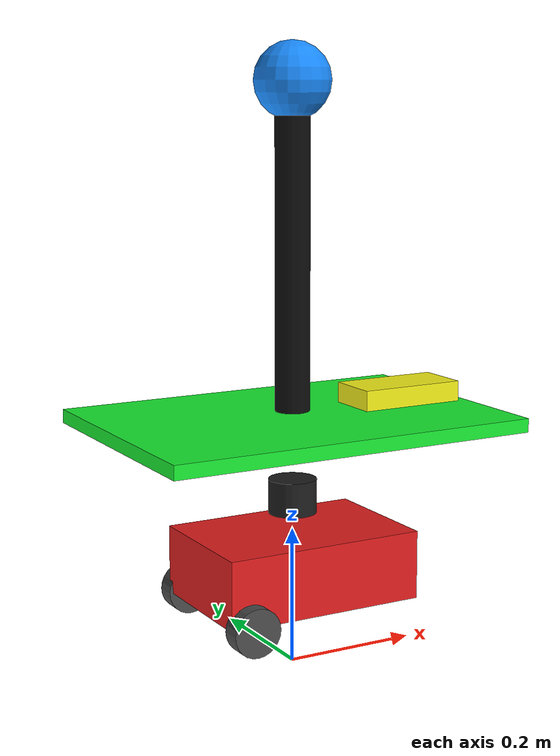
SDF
<?xml version="1.0"?>
<sdf version="1.10">
  <model name="diffbot">
    <pose>0 0 0.10 0 0 0</pose>
    <static>false</static>

    <link name="base_link">
      <inertial>
        <mass>5.0</mass>
        <inertia>
          <ixx>0.05</ixx><ixy>0</ixy><ixz>0</ixz>
          <iyy>0.08</iyy><iyz>0</iyz>
          <izz>0.10</izz>
        </inertia>
      </inertial>

      <collision name="base_collision">
        <pose>0 0 0.05 0 0 0</pose>
        <geometry>
          <box><size>0.30 0.20 0.10</size></box>
        </geometry>
      </collision>

      <visual name="base_visual">
        <pose>0 0 0.05 0 0 0</pose>
        <geometry>
          <box><size>0.30 0.20 0.10</size></box>
        </geometry>
        <material>
          <ambient>0.90 0.12 0.12 1</ambient>
          <diffuse>0.90 0.12 0.12 1</diffuse>
          <specular>0.15 0.15 0.15 1</specular>
        </material>
      </visual>

      <visual name="top_marker_visual">
        <pose>0 0 0.26 0 0 0</pose>
        <geometry>
          <box><size>0.55 0.38 0.02</size></box>
        </geometry>
        <material>
          <ambient>0.10 0.95 0.20 0.95</ambient>
          <diffuse>0.10 0.95 0.20 0.95</diffuse>
          <specular>0.05 0.05 0.05 1</specular>
        </material>
      </visual>

      <visual name="heading_marker_visual">
        <pose>0.18 0 0.285 0 0 0</pose>
        <geometry>
          <box><size>0.16 0.08 0.03</size></box>
        </geometry>
        <material>
          <ambient>0.98 0.96 0.10 1</ambient>
          <diffuse>0.98 0.96 0.10 1</diffuse>
          <specular>0.08 0.08 0.08 1</specular>
        </material>
      </visual>

      <visual name="mast_visual">
        <pose>0 0 0.50 0 0 0</pose>
        <geometry>
          <cylinder><radius>0.025</radius><length>0.45</length></cylinder>
        </geometry>
        <material>
          <ambient>0.05 0.05 0.05 1</ambient>
          <diffuse>0.05 0.05 0.05 1</diffuse>
          <specular>0.10 0.10 0.10 1</specular>
        </material>
      </visual>

      <visual name="mast_cap_visual">
        <pose>0 0 0.74 0 0 0</pose>
        <geometry>
          <sphere><radius>0.055</radius></sphere>
        </geometry>
        <material>
          <ambient>0.10 0.55 1.00 1</ambient>
          <diffuse>0.10 0.55 1.00 1</diffuse>
          <specular>0.10 0.10 0.10 1</specular>
        </material>
      </visual>
    </link>

    <link name="left_wheel_link">
      <pose>-0.12 0.105 0 1.5708 0 0</pose>
      <inertial>
        <mass>0.3</mass>
        <inertia>
          <ixx>0.0005</ixx><ixy>0</ixy><ixz>0</ixz>
          <iyy>0.001</iyy><iyz>0</iyz>
          <izz>0.0005</izz>
        </inertia>
      </inertial>
      <collision name="left_wheel_collision">
        <geometry>
          <cylinder><radius>0.035</radius><length>0.03</length></cylinder>
        </geometry>
        <surface>
          <friction>
            <ode>
              <mu>5.0</mu>
              <mu2>5.0</mu2>
              <slip1>0.0</slip1>
              <slip2>0.0</slip2>
            </ode>
          </friction>
        </surface>
      </collision>
      <visual name="left_wheel_visual">
        <geometry>
          <cylinder><radius>0.035</radius><length>0.03</length></cylinder>
        </geometry>
        <material>
          <ambient>0.2 0.2 0.2 1</ambient>
          <diffuse>0.3 0.3 0.3 1</diffuse>
        </material>
      </visual>
    </link>

    <link name="right_wheel_link">
      <pose>-0.12 -0.105 0 1.5708 0 0</pose>
      <inertial>
        <mass>0.3</mass>
        <inertia>
          <ixx>0.0005</ixx><ixy>0</ixy><ixz>0</ixz>
          <iyy>0.001</iyy><iyz>0</iyz>
          <izz>0.0005</izz>
        </inertia>
      </inertial>
      <collision name="right_wheel_collision">
        <geometry>
          <cylinder><radius>0.035</radius><length>0.03</length></cylinder>
        </geometry>
        <surface>
          <friction>
            <ode>
              <mu>5.0</mu>
              <mu2>5.0</mu2>
              <slip1>0.0</slip1>
              <slip2>0.0</slip2>
            </ode>
          </friction>
        </surface>
      </collision>
      <visual name="right_wheel_visual">
        <geometry>
          <cylinder><radius>0.035</radius><length>0.03</length></cylinder>
        </geometry>
        <material>
          <ambient>0.2 0.2 0.2 1</ambient>
          <diffuse>0.3 0.3 0.3 1</diffuse>
        </material>
      </visual>
    </link>

    <joint name="left_wheel_joint" type="revolute">
      <parent>base_link</parent>
      <child>left_wheel_link</child>
      <axis>
        <xyz expressed_in="__model__">0 1 0</xyz>
        <limit><lower>-1e16</lower><upper>1e16</upper></limit>
      </axis>
    </joint>

    <joint name="right_wheel_joint" type="revolute">
      <parent>base_link</parent>
      <child>right_wheel_link</child>
      <axis>
        <xyz expressed_in="__model__">0 1 0</xyz>
        <limit><lower>-1e16</lower><upper>1e16</upper></limit>
      </axis>
    </joint>

    <link name="laser_link">
      <pose>0 0 0.15 0 0 0</pose>
      <inertial>
        <mass>0.1</mass>
        <inertia>
          <ixx>0.0001</ixx><ixy>0</ixy><ixz>0</ixz>
          <iyy>0.0001</iyy><iyz>0</iyz>
          <izz>0.0001</izz>
        </inertia>
      </inertial>

      <visual name="laser_visual">
        <geometry>
          <cylinder><radius>0.035</radius><length>0.05</length></cylinder>
        </geometry>
        <material>
          <ambient>0.12 0.12 0.12 1</ambient>
          <diffuse>0.12 0.12 0.12 1</diffuse>
          <specular>0.05 0.05 0.05 1</specular>
        </material>
      </visual>

      <collision name="laser_collision">
        <geometry>
          <cylinder><radius>0.035</radius><length>0.05</length></cylinder>
        </geometry>
      </collision>

      <sensor name="lidar" type="gpu_lidar">
        <always_on>true</always_on>
        <visualize>false</visualize>
        <update_rate>10</update_rate>
        <topic>/lidar</topic>
        <lidar>
          <scan>
            <horizontal>
              <samples>360</samples>
              <resolution>1</resolution>
              <min_angle>-3.141592653589793</min_angle>
              <max_angle>3.141592653589793</max_angle>
            </horizontal>
          </scan>
          <range>
            <min>0.08</min>
            <max>10.0</max>
          </range>
        </lidar>
      </sensor>
    </link>

    <link name="caster_link">
      <pose>0.115 0 0 0 0 0</pose>
      <inertial>
        <mass>0.01</mass>
        <inertia>
          <ixx>0.000002</ixx><ixy>0</ixy><ixz>0</ixz>
          <iyy>0.000002</iyy><iyz>0</iyz>
          <izz>0.000002</izz>
        </inertia>
      </inertial>
    <collision name="caster_collision">
      <pose>0 0 -0.022 0 0 0</pose>
      <geometry>
        <sphere><radius>0.012</radius></sphere>
      </geometry>

      <surface>
        <friction>
          <ode>
            <mu>0.0001</mu>
            <mu2>0.0001</mu2>
            <slip1>10.0</slip1>
            <slip2>10.0</slip2>
          </ode>
        </friction>
        <contact>
          <ode>
            <min_depth>0.0001</min_depth>
            <kp>100000.0</kp>
            <kd>1.0</kd>
          </ode>
        </contact>
      </surface>
    </collision>
      <visual name="caster_visual">
        <geometry>
          <sphere><radius>0.035</radius></sphere>
        </geometry>
        <material>
          <ambient>0.75 0.75 0.75 1</ambient>
          <diffuse>0.85 0.85 0.85 1</diffuse>
        </material>
      </visual>
    </link>

    <joint name="laser_joint" type="fixed">
      <parent>base_link</parent>
      <child>laser_link</child>
    </joint>

    <joint name="caster_joint" type="fixed">
      <parent>base_link</parent>
      <child>caster_link</child>
    </joint>

    <plugin filename="gz-sim-diff-drive-system" name="gz::sim::systems::DiffDrive">
      <left_joint>left_wheel_joint</left_joint>
      <right_joint>right_wheel_joint</right_joint>
      <wheel_separation>0.25</wheel_separation>
      <wheel_radius>0.035</wheel_radius>
      <topic>/cmd_vel</topic>
      <odom_topic>/odom_raw</odom_topic>
      <tf_topic>/tf_raw</tf_topic>
      <frame_id>odom_raw</frame_id>
      <child_frame_id>base_link</child_frame_id>
      <odom_publish_frequency>50</odom_publish_frequency>
      <max_linear_acceleration>8.0</max_linear_acceleration>
      <max_angular_acceleration>12.0</max_angular_acceleration>
      <max_linear_velocity>5.0</max_linear_velocity>
      <max_angular_velocity>7.5</max_angular_velocity>
    </plugin>

    <plugin filename="gz-sim-joint-state-publisher-system"
            name="gz::sim::systems::JointStatePublisher">
      <topic>/joint_states</topic>
      <joint_name>left_wheel_joint</joint_name>
      <joint_name>right_wheel_joint</joint_name>
    </plugin>
  </model>
</sdf>
